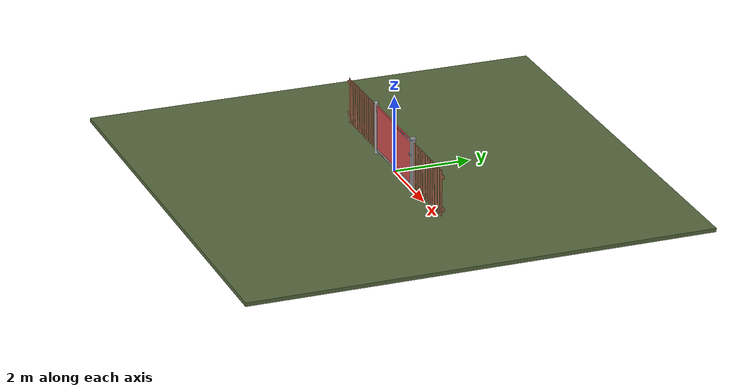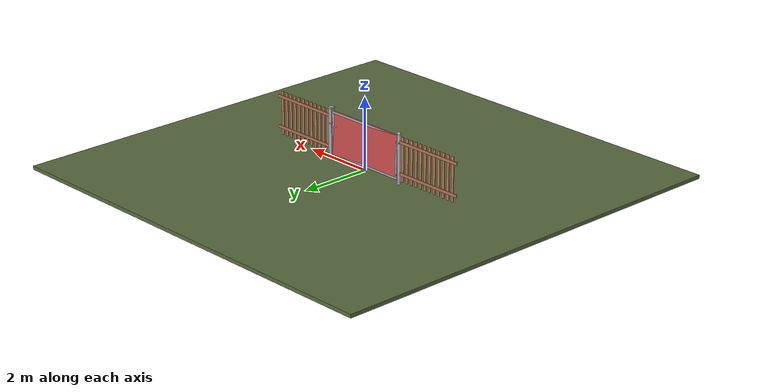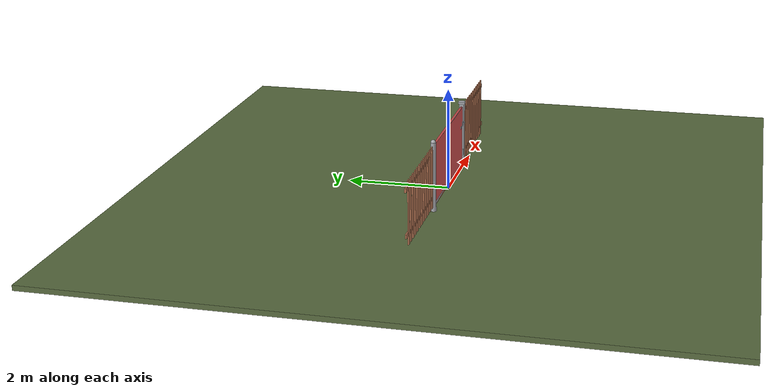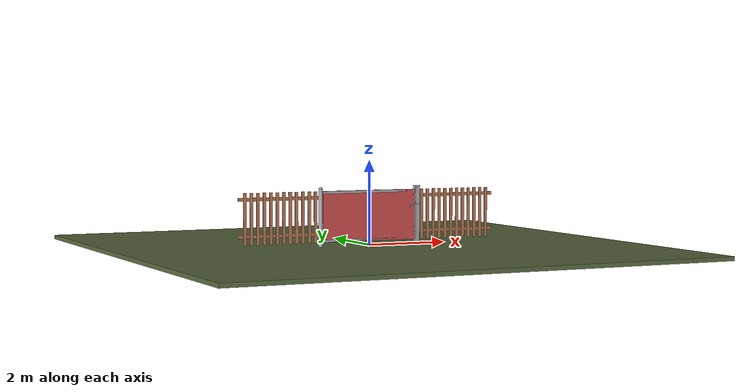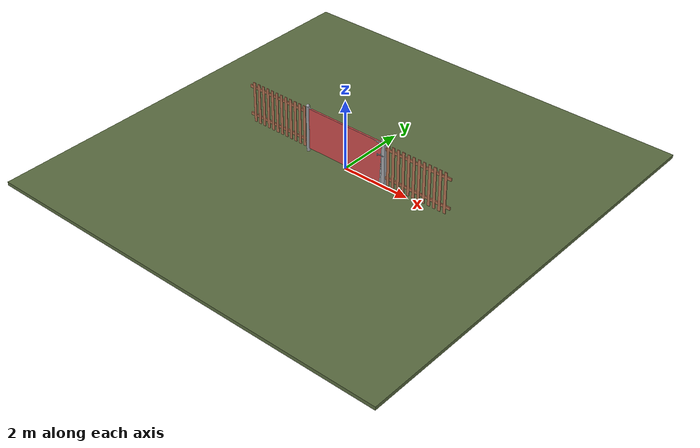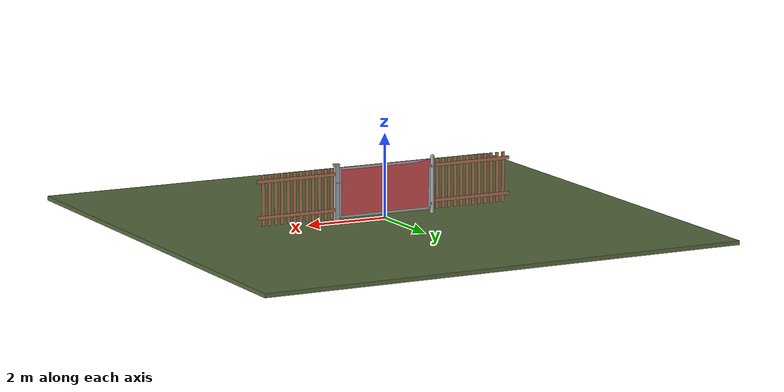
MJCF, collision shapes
<?xml version="1.0" ?>
<mujoco model="db0776_gate_swing_full">
  <compiler angle="radian" meshdir="../../hardware" texturedir="../../textures" autolimits="true" inertiafromgeom="false"/>
  <option timestep="0.002" integrator="implicitfast" cone="elliptic" impratio="10" noslip_iterations="3">
    <flag multiccd="enable"/>
  </option>
  <size memory="16M"/>
  <default>
    <geom condim="4" solref="0.005 1" solimp="0.95 0.99 0.001"/>
    <joint solreflimit="0.005 1" solimplimit="0.95 0.99 0.001"/>
    <tendon solreflimit="0.005 1"/>
    <equality solref="0.002 1"/>
  </default>
  <visual>
    <headlight ambient="0.4 0.4 0.4" diffuse="0.7 0.7 0.7" specular="0.2 0.2 0.2"/>
    <quality shadowsize="4096"/>
    <map znear="0.01" zfar="60"/>
  </visual>
  <asset>
    <mesh name="strap_hinge_78d1bbb966" file="strap_hinge_78d1bbb966.obj"/>
    <material name="mat_floor" rgba="0.35 0.42 0.25 1" specular="0.2" shininess="0.15" reflectance="0"/>
    <material name="mat_wall" rgba="0.78 0.76 0.7 1" specular="0.2" shininess="0.1" reflectance="0"/>
    <material name="mat_leaf" rgba="0.65 0.66 0.68 1" specular="0.74" shininess="0.5" reflectance="0.36"/>
    <material name="mat_hinge" rgba="0.65 0.66 0.68 1" specular="0.74" shininess="0.5" reflectance="0.36"/>
    <material name="mat_op_steel_galvanized" rgba="0.65 0.66 0.68 1" specular="0.74" shininess="0.5" reflectance="0.36"/>
    <material name="mat_frame" rgba="0.65 0.66 0.68 1" specular="0.74" shininess="0.5" reflectance="0.36"/>
    <material name="mat_fence" rgba="0.7 0.45 0.32 1" specular="0.2" shininess="0.4" reflectance="0"/>
    <texture name="skybox" type="skybox" builtin="gradient" rgb1="0.6 0.7 0.85" rgb2="0.9 0.92 0.95" width="256" height="256"/>
  </asset>
  <worldbody>
    <light name="sun" pos="1.5 -2.5 4" dir="-0.3 0.5 -0.8" directional="true" diffuse="0.8 0.8 0.8" specular="0.3 0.3 0.3" castshadow="true"/>
    <light name="fill" pos="-1.5 2.5 3" dir="0.3 -0.5 -0.7" directional="true" diffuse="0.35 0.35 0.4" castshadow="false"/>
    <camera name="robot_view" pos="0 -2.88625 1.41815" xyaxes="1 0 0 0 0.26963 0.962964" fovy="52"/>
    <camera name="far_view" pos="0 2.88625 1.41815" xyaxes="-1 0 0 0 -0.26963 0.962964" fovy="52"/>
    <camera name="iso" pos="2.19355 -2.42445 1.87995" xyaxes="0.741536 0.670913 0 -0.242917 0.268487 0.932151" fovy="46"/>
    <camera name="detail_handle" pos="1.366 -0.8345 1.285" xyaxes="0.97561 0.219512 0 -0.070934 0.315262 0.94635" fovy="38"/>
    <geom name="floor" type="box" size="6 6 0.05" pos="0 0 -0.05" material="mat_floor" group="0" contype="1" conaffinity="1" friction="0.8 0.005 0.0001" density="2400"/>
    <geom name="hinge_pintle_0" type="cylinder" size="0.008 0.02" pos="-1.203 0.05 0.224" material="mat_hinge" group="1" contype="0" conaffinity="0" density="7850"/>
    <geom name="hinge_pintle_1" type="cylinder" size="0.008 0.02" pos="-1.203 0.05 1.124" material="mat_hinge" group="1" contype="0" conaffinity="0" density="7850"/>
    <geom name="post_hinge" type="cylinder" size="0.05 0.675" pos="-1.256 0 0.675" material="mat_frame" group="0" contype="1" conaffinity="1" friction="0.6 0.005 0.0001" density="800"/>
    <geom name="post_hinge_cap" type="sphere" size="0.05" pos="-1.256 0 1.35" material="mat_frame" group="1" contype="0" conaffinity="0" density="800"/>
    <geom name="post_latch" type="box" size="0.05 0.05 0.675" pos="1.256 0 0.675" material="mat_frame" group="0" contype="1" conaffinity="1" friction="0.6 0.005 0.0001" density="800"/>
    <geom name="post_latch_cap" type="box" size="0.065 0.065 0.02" pos="1.256 0 1.37" material="mat_frame" group="1" contype="0" conaffinity="0" density="800"/>
    <geom name="gate_stop" type="box" size="0.02 0.012 0.06" pos="1.186 -0.0345 0.35" material="mat_frame" group="0" contype="1" conaffinity="1" friction="0.6 0.005 0.0001" density="800"/>
    <geom name="fence_picket_l_0" type="box" size="0.04 0.01 0.6" pos="-1.386 0 0.7" material="mat_fence" group="0" contype="1" conaffinity="1" friction="0.6 0.005 0.0001" density="400"/>
    <geom name="fence_picket_l_1" type="box" size="0.04 0.01 0.6" pos="-1.546 0 0.7" material="mat_fence" group="0" contype="1" conaffinity="1" friction="0.6 0.005 0.0001" density="400"/>
    <geom name="fence_picket_l_2" type="box" size="0.04 0.01 0.6" pos="-1.706 0 0.7" material="mat_fence" group="0" contype="1" conaffinity="1" friction="0.6 0.005 0.0001" density="400"/>
    <geom name="fence_picket_l_3" type="box" size="0.04 0.01 0.6" pos="-1.866 0 0.7" material="mat_fence" group="0" contype="1" conaffinity="1" friction="0.6 0.005 0.0001" density="400"/>
    <geom name="fence_picket_l_4" type="box" size="0.04 0.01 0.6" pos="-2.026 0 0.7" material="mat_fence" group="0" contype="1" conaffinity="1" friction="0.6 0.005 0.0001" density="400"/>
    <geom name="fence_picket_l_5" type="box" size="0.04 0.01 0.6" pos="-2.186 0 0.7" material="mat_fence" group="0" contype="1" conaffinity="1" friction="0.6 0.005 0.0001" density="400"/>
    <geom name="fence_picket_l_6" type="box" size="0.04 0.01 0.6" pos="-2.346 0 0.7" material="mat_fence" group="0" contype="1" conaffinity="1" friction="0.6 0.005 0.0001" density="400"/>
    <geom name="fence_picket_l_7" type="box" size="0.04 0.01 0.6" pos="-2.506 0 0.7" material="mat_fence" group="0" contype="1" conaffinity="1" friction="0.6 0.005 0.0001" density="400"/>
    <geom name="fence_picket_l_8" type="box" size="0.04 0.01 0.6" pos="-2.666 0 0.7" material="mat_fence" group="0" contype="1" conaffinity="1" friction="0.6 0.005 0.0001" density="400"/>
    <geom name="fence_picket_l_9" type="box" size="0.04 0.01 0.6" pos="-2.826 0 0.7" material="mat_fence" group="0" contype="1" conaffinity="1" friction="0.6 0.005 0.0001" density="400"/>
    <geom name="fence_picket_l_10" type="box" size="0.04 0.01 0.6" pos="-2.986 0 0.7" material="mat_fence" group="0" contype="1" conaffinity="1" friction="0.6 0.005 0.0001" density="400"/>
    <geom name="fence_picket_l_11" type="box" size="0.04 0.01 0.6" pos="-3.146 0 0.7" material="mat_fence" group="0" contype="1" conaffinity="1" friction="0.6 0.005 0.0001" density="400"/>
    <geom name="fence_rail_l" type="box" size="1 0.015 0.04" pos="-2.306 0.015 1.15" material="mat_fence" group="0" contype="1" conaffinity="1" friction="0.6 0.005 0.0001" density="400"/>
    <geom name="fence_rail_b_l" type="box" size="1 0.015 0.04" pos="-2.306 0.015 0.3" material="mat_fence" group="0" contype="1" conaffinity="1" friction="0.6 0.005 0.0001" density="400"/>
    <geom name="fence_picket_r_0" type="box" size="0.04 0.01 0.6" pos="1.386 0 0.7" material="mat_fence" group="0" contype="1" conaffinity="1" friction="0.6 0.005 0.0001" density="400"/>
    <geom name="fence_picket_r_1" type="box" size="0.04 0.01 0.6" pos="1.546 0 0.7" material="mat_fence" group="0" contype="1" conaffinity="1" friction="0.6 0.005 0.0001" density="400"/>
    <geom name="fence_picket_r_2" type="box" size="0.04 0.01 0.6" pos="1.706 0 0.7" material="mat_fence" group="0" contype="1" conaffinity="1" friction="0.6 0.005 0.0001" density="400"/>
    <geom name="fence_picket_r_3" type="box" size="0.04 0.01 0.6" pos="1.866 0 0.7" material="mat_fence" group="0" contype="1" conaffinity="1" friction="0.6 0.005 0.0001" density="400"/>
    <geom name="fence_picket_r_4" type="box" size="0.04 0.01 0.6" pos="2.026 0 0.7" material="mat_fence" group="0" contype="1" conaffinity="1" friction="0.6 0.005 0.0001" density="400"/>
    <geom name="fence_picket_r_5" type="box" size="0.04 0.01 0.6" pos="2.186 0 0.7" material="mat_fence" group="0" contype="1" conaffinity="1" friction="0.6 0.005 0.0001" density="400"/>
    <geom name="fence_picket_r_6" type="box" size="0.04 0.01 0.6" pos="2.346 0 0.7" material="mat_fence" group="0" contype="1" conaffinity="1" friction="0.6 0.005 0.0001" density="400"/>
    <geom name="fence_picket_r_7" type="box" size="0.04 0.01 0.6" pos="2.506 0 0.7" material="mat_fence" group="0" contype="1" conaffinity="1" friction="0.6 0.005 0.0001" density="400"/>
    <geom name="fence_picket_r_8" type="box" size="0.04 0.01 0.6" pos="2.666 0 0.7" material="mat_fence" group="0" contype="1" conaffinity="1" friction="0.6 0.005 0.0001" density="400"/>
    <geom name="fence_picket_r_9" type="box" size="0.04 0.01 0.6" pos="2.826 0 0.7" material="mat_fence" group="0" contype="1" conaffinity="1" friction="0.6 0.005 0.0001" density="400"/>
    <geom name="fence_picket_r_10" type="box" size="0.04 0.01 0.6" pos="2.986 0 0.7" material="mat_fence" group="0" contype="1" conaffinity="1" friction="0.6 0.005 0.0001" density="400"/>
    <geom name="fence_picket_r_11" type="box" size="0.04 0.01 0.6" pos="3.146 0 0.7" material="mat_fence" group="0" contype="1" conaffinity="1" friction="0.6 0.005 0.0001" density="400"/>
    <geom name="fence_rail_r" type="box" size="1 0.015 0.04" pos="2.306 0.015 1.15" material="mat_fence" group="0" contype="1" conaffinity="1" friction="0.6 0.005 0.0001" density="400"/>
    <geom name="fence_rail_b_r" type="box" size="1 0.015 0.04" pos="2.306 0.015 0.3" material="mat_fence" group="0" contype="1" conaffinity="1" friction="0.6 0.005 0.0001" density="400"/>
    <geom name="hinge_pintle_1_strap_0" type="box" size="0.048 0.0152 0.016" pos="-1.2585 0.0412 1.124" material="mat_hinge" group="1" contype="0" conaffinity="0" density="7850"/>
    <site name="approach_point" pos="0 -1.5 0" quat="1 0 0 0" size="0.05" rgba="0.2 0.9 0.2 0.5" group="4"/>
    <site name="goal_point" pos="0 1.5 0" quat="1 0 0 0" size="0.05" rgba="0.2 0.9 0.2 0.5" group="4"/>
    <site name="door_plane_center" pos="0 0 0.61" quat="1 0 0 0" size="0.02" rgba="0.2 0.9 0.2 0.5" group="4"/>
    <body name="leaf" pos="-1.206 0 0">
      <inertial pos="1.152947 0.001442 0.700959" mass="39.345037" quat="0.707104 -0.707107 0.000068 -0.001994" diaginertia="4.884334788 20.282372398 25.150975297"/>
      <joint name="leaf_hinge" type="hinge" axis="0 0 1" pos="0.003 0.05 0" limited="true" range="0 1.745329" damping="7.240249" frictionloss="4.144449" armature="0.02"/>
      <geom name="leaf_slab_col" type="box" size="1.2 0.0225 0.6" pos="1.203 0 0.7" material="mat_leaf" group="3" contype="1" conaffinity="1" rgba="0.8 0.3 0.3 0.25" friction="0.42 0.005 0.0001" density="1"/>
      <geom name="leaf_rail_b" type="box" size="1.2 0.0225 0.03" pos="1.203 0 0.13" material="mat_leaf" group="1" contype="0" conaffinity="0" density="1"/>
      <geom name="leaf_rail_t" type="box" size="1.2 0.0225 0.03" pos="1.203 0 1.27" material="mat_leaf" group="1" contype="0" conaffinity="0" density="1"/>
      <geom name="leaf_stile_h" type="box" size="0.03 0.0225 0.6" pos="0.033 0 0.7" material="mat_leaf" group="1" contype="0" conaffinity="0" density="1"/>
      <geom name="leaf_stile_l" type="box" size="0.03 0.0225 0.6" pos="2.373 0 0.7" material="mat_leaf" group="1" contype="0" conaffinity="0" density="1"/>
      <geom name="leaf_bar_0" type="cylinder" size="0.0095 0.54" pos="0.130059 0 0.7" material="mat_leaf" group="1" contype="0" conaffinity="0" density="1"/>
      <geom name="leaf_bar_1" type="cylinder" size="0.0095 0.54" pos="0.264176 0 0.7" material="mat_leaf" group="1" contype="0" conaffinity="0" density="1"/>
      <geom name="leaf_bar_2" type="cylinder" size="0.0095 0.54" pos="0.398294 0 0.7" material="mat_leaf" group="1" contype="0" conaffinity="0" density="1"/>
      <geom name="leaf_bar_3" type="cylinder" size="0.0095 0.54" pos="0.532412 0 0.7" material="mat_leaf" group="1" contype="0" conaffinity="0" density="1"/>
      <geom name="leaf_bar_4" type="cylinder" size="0.0095 0.54" pos="0.666529 0 0.7" material="mat_leaf" group="1" contype="0" conaffinity="0" density="1"/>
      <geom name="leaf_bar_5" type="cylinder" size="0.0095 0.54" pos="0.800647 0 0.7" material="mat_leaf" group="1" contype="0" conaffinity="0" density="1"/>
      <geom name="leaf_bar_6" type="cylinder" size="0.0095 0.54" pos="0.934765 0 0.7" material="mat_leaf" group="1" contype="0" conaffinity="0" density="1"/>
      <geom name="leaf_bar_7" type="cylinder" size="0.0095 0.54" pos="1.068882 0 0.7" material="mat_leaf" group="1" contype="0" conaffinity="0" density="1"/>
      <geom name="leaf_bar_8" type="cylinder" size="0.0095 0.54" pos="1.203 0 0.7" material="mat_leaf" group="1" contype="0" conaffinity="0" density="1"/>
      <geom name="leaf_bar_9" type="cylinder" size="0.0095 0.54" pos="1.337118 0 0.7" material="mat_leaf" group="1" contype="0" conaffinity="0" density="1"/>
      <geom name="leaf_bar_10" type="cylinder" size="0.0095 0.54" pos="1.471235 0 0.7" material="mat_leaf" group="1" contype="0" conaffinity="0" density="1"/>
      <geom name="leaf_bar_11" type="cylinder" size="0.0095 0.54" pos="1.605353 0 0.7" material="mat_leaf" group="1" contype="0" conaffinity="0" density="1"/>
      <geom name="leaf_bar_12" type="cylinder" size="0.0095 0.54" pos="1.739471 0 0.7" material="mat_leaf" group="1" contype="0" conaffinity="0" density="1"/>
      <geom name="leaf_bar_13" type="cylinder" size="0.0095 0.54" pos="1.873588 0 0.7" material="mat_leaf" group="1" contype="0" conaffinity="0" density="1"/>
      <geom name="leaf_bar_14" type="cylinder" size="0.0095 0.54" pos="2.007706 0 0.7" material="mat_leaf" group="1" contype="0" conaffinity="0" density="1"/>
      <geom name="leaf_bar_15" type="cylinder" size="0.0095 0.54" pos="2.141824 0 0.7" material="mat_leaf" group="1" contype="0" conaffinity="0" density="1"/>
      <geom name="leaf_bar_16" type="cylinder" size="0.0095 0.54" pos="2.275941 0 0.7" material="mat_leaf" group="1" contype="0" conaffinity="0" density="1"/>
      <geom name="leaf_crossbar_33" type="box" size="1.14 0.018 0.02" pos="1.203 0 0.496" material="mat_leaf" group="1" contype="0" conaffinity="0" density="1"/>
      <geom name="leaf_crossbar_66" type="box" size="1.14 0.018 0.02" pos="1.203 0 0.892" material="mat_leaf" group="1" contype="0" conaffinity="0" density="1"/>
      <geom name="hinge_strap_0" type="mesh" mesh="strap_hinge_78d1bbb966" pos="0.003 0.0255 0.25" material="mat_hinge" group="1" contype="0" conaffinity="0" density="7850"/>
      <geom name="hinge_strap_eye_0" type="cylinder" size="0.011 0.012" pos="0.003 0.05 0.25" material="mat_hinge" group="1" contype="0" conaffinity="0" density="7850"/>
      <geom name="hinge_strap_neck_0" type="box" size="0.012 0.01625 0.006" pos="0.003 0.03775 0.25" material="mat_hinge" group="1" contype="0" conaffinity="0" density="7850"/>
      <geom name="hinge_strap_1" type="mesh" mesh="strap_hinge_78d1bbb966" pos="0.003 0.0255 1.15" material="mat_hinge" group="1" contype="0" conaffinity="0" density="7850"/>
      <geom name="hinge_strap_eye_1" type="cylinder" size="0.011 0.012" pos="0.003 0.05 1.15" material="mat_hinge" group="1" contype="0" conaffinity="0" density="7850"/>
      <geom name="hinge_strap_neck_1" type="box" size="0.012 0.01625 0.006" pos="0.003 0.03775 1.15" material="mat_hinge" group="1" contype="0" conaffinity="0" density="7850"/>
      <geom name="leaf_fork_strap_n" type="box" size="0.02 0.002 0.03" pos="2.263 -0.0245 0.9" material="mat_op_steel_galvanized" group="1" contype="0" conaffinity="0" density="7800"/>
      <geom name="leaf_fork_strap_p" type="box" size="0.02 0.002 0.03" pos="2.263 0.0245 0.9" material="mat_op_steel_galvanized" group="1" contype="0" conaffinity="0" density="7800"/>
      <geom name="leaf_fork_pin" type="cylinder" size="0.005 0.0345" pos="2.263 -0.008 0.9" quat="0.707107 -0.707107 0 0" material="mat_op_steel_galvanized" group="1" contype="0" conaffinity="0" density="7800"/>
      <site name="leaf_edge_mid" pos="2.403 0 0.6" quat="1 0 0 0" size="0.02" rgba="0.2 0.9 0.2 0.5" group="4"/>
      <body name="leaf_fork" pos="2.263 0 0.9">
        <inertial pos="0.117177 -0.014402 0.04089" mass="0.225763" quat="0.978764 -0.031809 -0.131515 0.153993" diaginertia="0.00037273 0.000992034 0.001286798"/>
        <joint name="leaf_fork_hinge" type="hinge" axis="0 -1 0" limited="true" range="0 1.2" damping="0.037477" frictionloss="0.006367" armature="0.0001"/>
        <geom name="leaf_fork_arm" type="box" size="0.069176 0.004 0.012" pos="0.0645 -0.0345 0.025" quat="0.982958 0 -0.183833 0" material="mat_op_steel_galvanized" group="0" contype="1" conaffinity="1" friction="0.6 0.005 0.0001" density="2500"/>
        <geom name="leaf_fork_eye" type="cylinder" size="0.014 0.005" pos="0 -0.0345 0" quat="0.707107 -0.707107 0 0" material="mat_op_steel_galvanized" group="1" contype="0" conaffinity="0" density="2500"/>
        <geom name="leaf_fork_tine_n" type="box" size="0.05 0.003 0.012" pos="0.179 -0.059 0.05" material="mat_op_steel_galvanized" group="0" contype="1" conaffinity="1" friction="0.6 0.005 0.0001" density="2500"/>
        <geom name="leaf_fork_tine_p" type="box" size="0.05 0.003 0.012" pos="0.179 0.059 0.05" material="mat_op_steel_galvanized" group="0" contype="1" conaffinity="1" friction="0.6 0.005 0.0001" density="2500"/>
        <geom name="leaf_fork_bridge" type="box" size="0.004 0.062 0.012" pos="0.129 0 0.05" material="mat_op_steel_galvanized" group="0" contype="1" conaffinity="1" friction="0.6 0.005 0.0001" density="2500"/>
        <geom name="leaf_fork_handle" type="capsule" size="0.006 0.018" pos="0.129 -0.0345 0.08" material="mat_op_steel_galvanized" group="0" contype="1" conaffinity="1" friction="0.7 0.01 0.0001" density="2500"/>
        <site name="leaf_fork_grip" pos="0.129 -0.0345 0.105" quat="1 0 0 0" size="0.012" rgba="0.2 0.9 0.2 0.5" group="4"/>
      </body>
    </body>
  </worldbody>
  <sensor>
    <jointpos name="leaf_hinge_pos" joint="leaf_hinge"/>
    <jointvel name="leaf_hinge_vel" joint="leaf_hinge"/>
    <jointpos name="leaf_fork_hinge_pos" joint="leaf_fork_hinge"/>
    <jointvel name="leaf_fork_hinge_vel" joint="leaf_fork_hinge"/>
  </sensor>
</mujoco>
